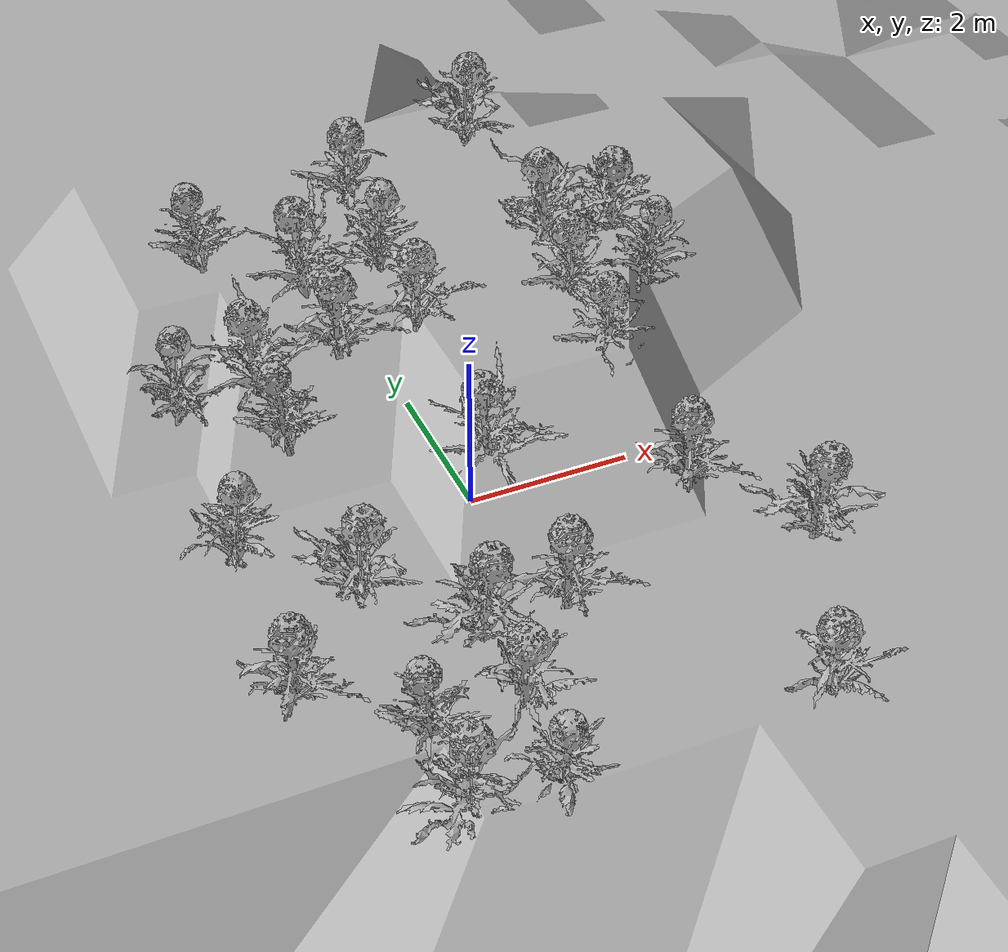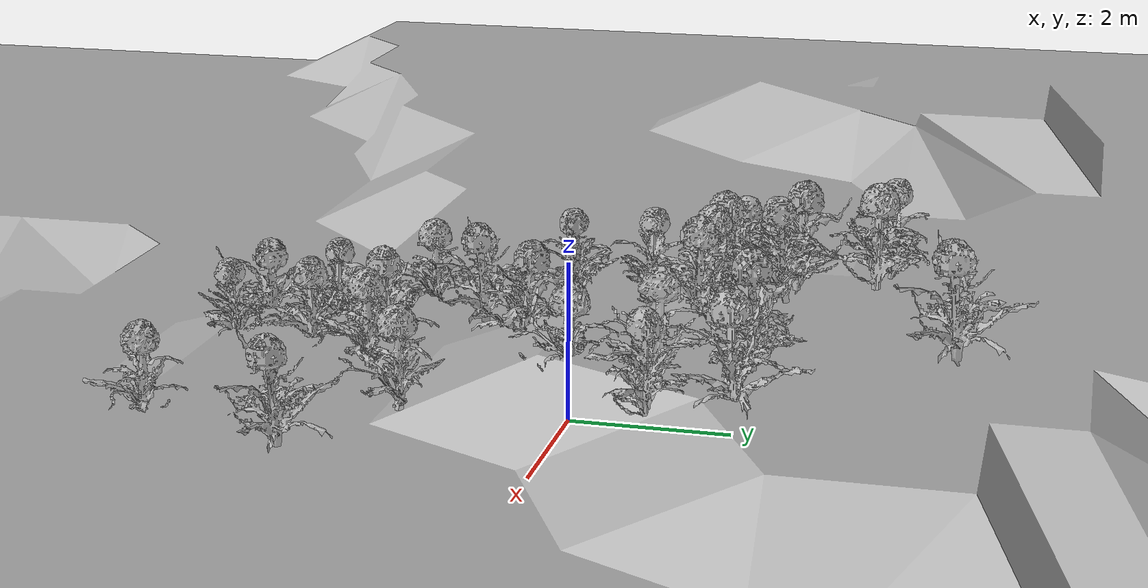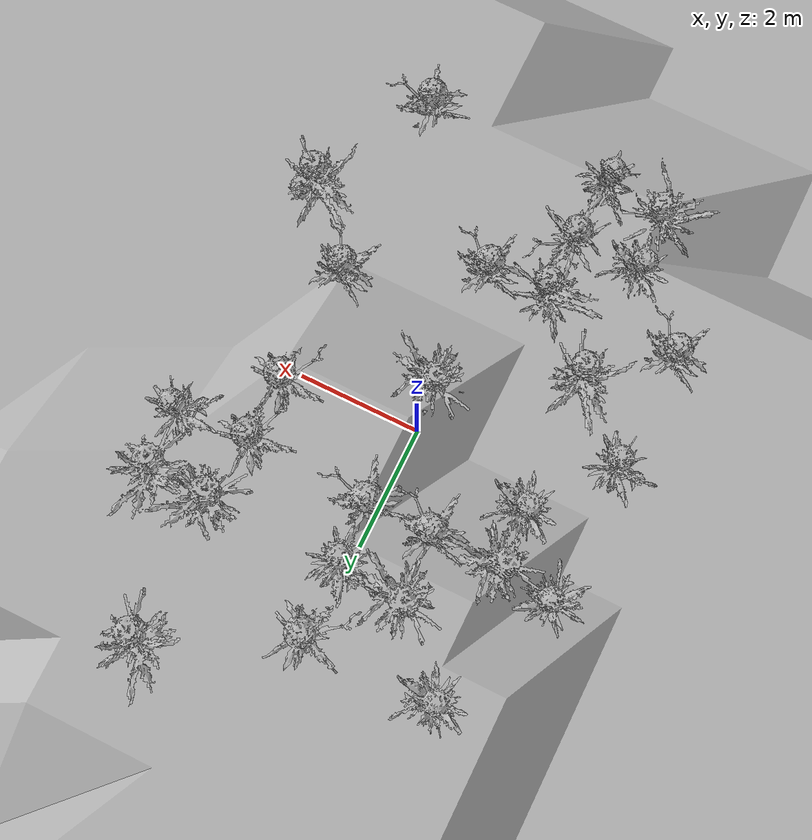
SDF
<sdf version="1.6">
 <world name="default">
  <include><uri>model://sun</uri></include>
  <include><uri>model://terrain1</uri><name>terrain1</name></include>
  <include>
   <pose>-3.04195362527812 -2.5814682026072617 0.3451485388742197 0 0 2.6810490103697093</pose>
   <uri>model://artichoke2</uri>
   <name>artichoke3</name>
  </include>
  <include>
   <pose>-3.000047544493529 -0.5548895119705467 0.6297828951833643 0 0 0.6385324295030874</pose>
   <uri>model://artichoke4</uri>
   <name>artichoke5</name>
  </include>
  <include>
   <pose>-2.96134078704355 1.6049381456569836 0.9595134933793352 0 0 2.3824504419604775</pose>
   <uri>model://artichoke4</uri>
   <name>artichoke7</name>
  </include>
  <include>
   <pose>-2.0167018460238433 -4.580191124526571 0.14813585758536763 0 0 2.00058725452194</pose>
   <uri>model://artichoke1</uri>
   <name>artichoke11</name>
  </include>
  <include>
   <pose>-1.946334367681588 -3.6561364317248706 0.2635118470548126 0 0 -2.0108222563943015</pose>
   <uri>model://artichoke4</uri>
   <name>artichoke12</name>
  </include>
  <include>
   <pose>-1.9526894390896345 -1.581054350310022 0.5559573846402923 0 0 0.44094398126680456</pose>
   <uri>model://artichoke1</uri>
   <name>artichoke14</name>
  </include>
  <include>
   <pose>-1.9666642848850069 0.5890444076497658 0.9455679816905159 0 0 -1.9284304362333906</pose>
   <uri>model://artichoke4</uri>
   <name>artichoke16</name>
  </include>
  <include>
   <pose>-2.0067093336364317 1.5071895050984758 1.1267027203373825 0 0 -1.7459675679611062</pose>
   <uri>model://artichoke1</uri>
   <name>artichoke17</name>
  </include>
  <include>
   <pose>-1.9778049139990845 3.6398107180359327 1.5018939176606563 0 0 -1.7471264211745283</pose>
   <uri>model://artichoke4</uri>
   <name>artichoke19</name>
  </include>
  <include>
   <pose>-0.9881691425506824 -4.655653383183535 0.1873759555510125 0 0 -0.1952785192368518</pose>
   <uri>model://artichoke4</uri>
   <name>artichoke21</name>
  </include>
  <include>
   <pose>-0.9402374786688165 -3.6256950780739174 0.31419467740538454 0 0 -1.998781864026179</pose>
   <uri>model://artichoke2</uri>
   <name>artichoke22</name>
  </include>
  <include>
   <pose>-0.9753397723087286 -2.607364301703567 0.45485416106458876 0 0 1.4236007530488335</pose>
   <uri>model://artichoke1</uri>
   <name>artichoke23</name>
  </include>
  <include>
   <pose>-0.9945079111870182 1.5759820635240653 1.3239390500630104 0 0 2.983942905160065</pose>
   <uri>model://artichoke2</uri>
   <name>artichoke27</name>
  </include>
  <include>
   <pose>-1.0245978050722846 2.59292294667387 1.567357576678624 0 0 -2.224707739750554</pose>
   <uri>model://artichoke1</uri>
   <name>artichoke28</name>
  </include>
  <include>
   <pose>0.03077474820031647 -2.5373419407644247 0.5088389504781939 0 0 2.9602282212152318</pose>
   <uri>model://artichoke2</uri>
   <name>artichoke33</name>
  </include>
  <include>
   <pose>0.010213163104508639 -0.5386129239960417 0.8904620033602562 0 0 -2.2541494529569546</pose>
   <uri>model://artichoke1</uri>
   <name>artichoke35</name>
  </include>
  <include>
   <pose>-0.007967917000790681 1.5788579634103368 1.4290369888538066 0 0 -2.8548506775339</pose>
   <uri>model://artichoke2</uri>
   <name>artichoke37</name>
  </include>
  <include>
   <pose>-0.08589855616596853 2.5863487667073586 1.6967310516865453 0 0 0.3595266199730034</pose>
   <uri>model://artichoke4</uri>
   <name>artichoke38</name>
  </include>
  <include>
   <pose>-0.046434736534708275 3.6418514927323837 1.9345280728378216 0 0 1.1985338632080103</pose>
   <uri>model://artichoke2</uri>
   <name>artichoke39</name>
  </include>
  <include>
   <pose>2.006485202428245 -4.658350231137477 0.280914836989678 0 0 -2.81541349651516</pose>
   <uri>model://artichoke2</uri>
   <name>artichoke41</name>
  </include>
  <include>
   <pose>1.9937557885424086 -1.5043518721071918 0.7071295859873785 0 0 2.63522487926599</pose>
   <uri>model://artichoke2</uri>
   <name>artichoke44</name>
  </include>
  <include>
   <pose>1.972053657853052 0.4855216286904782 1.1172185316534238 0 0 1.5400605709247221</pose>
   <uri>model://artichoke2</uri>
   <name>artichoke46</name>
  </include>
  <include>
   <pose>1.9408831723658932 1.4950455950045647 1.3498576783554204 0 0 1.7515528431113054</pose>
   <uri>model://artichoke2</uri>
   <name>artichoke47</name>
  </include>
  <include>
   <pose>2.0824436864620575 2.5429933297867056 1.5501811530321665 0 0 -1.0344531415257134</pose>
   <uri>model://artichoke1</uri>
   <name>artichoke48</name>
  </include>
  <include>
   <pose>1.948927559265802 4.715197581067086 1.7935607452867863 0 0 0.28389503737165267</pose>
   <uri>model://artichoke1</uri>
   <name>artichoke50</name>
  </include>
  <include>
   <pose>2.998688203059354 -2.624699805948234 0.5094989433400576 0 0 0.815691961564784</pose>
   <uri>model://artichoke1</uri>
   <name>artichoke53</name>
  </include>
  <include>
   <pose>2.9926165509652476 1.5577832690483522 1.2218763026437969 0 0 1.4682982828320608</pose>
   <uri>model://artichoke4</uri>
   <name>artichoke57</name>
  </include>
  <include>
   <pose>3.002564683265093 2.5200523985360728 1.3763004173920765 0 0 -0.3609951780251772</pose>
   <uri>model://artichoke1</uri>
   <name>artichoke58</name>
  </include>
 </world>
</sdf>

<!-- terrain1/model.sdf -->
<sdf version="1.6">
  <model name="terrain1">
    <link name='link'>
      <pose>0 0 0 0 0 0</pose>
      <gravity>1</gravity>
      <self_collide>0</self_collide>
      <kinematic>0</kinematic>
      <enable_wind>0</enable_wind>
      <visual name='visual'>
        <pose>0 0 0 0 0 0</pose>
        <geometry>
          <mesh>
            <uri>model://terrain1/meshes/terrain1.obj</uri>
          </mesh>
        </geometry>
        <transparency>0</transparency>
        <cast_shadows>1</cast_shadows>
      </visual>
      <collision name='collision'>
        <laser_retro>0</laser_retro>
        <max_contacts>10</max_contacts>
        <pose>0 0 0 0 0 0</pose>
        <geometry>
          <mesh>
            <uri>model://terrain1/meshes/terrain1.obj</uri>
            <scale>1 1 1</scale>
          </mesh>
        </geometry>
      </collision>
    </link>
    <static>1</static>
    <allow_auto_disable>1</allow_auto_disable>
  </model>
</sdf>

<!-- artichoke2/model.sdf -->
<sdf version='1.7'>
  <model name="artichoke2">
    <link name='link'>
      <pose>0 0 0 0 0 0</pose>
      <gravity>1</gravity>
      <self_collide>0</self_collide>
      <kinematic>0</kinematic>
      <enable_wind>0</enable_wind>
      <visual name='visual'>
        <pose>0 0 0 0 0 0</pose>
        <geometry>
          <mesh>
            <uri>model://artichoke2/meshes/carciofo2.obj</uri>
          </mesh>
        </geometry>
        <transparency>0</transparency>
        <cast_shadows>1</cast_shadows>
      </visual>
      <collision name='collision'>
        <laser_retro>0</laser_retro>
        <max_contacts>10</max_contacts>
        <pose>0 0 0 0 0 0</pose>
        <geometry>
          <mesh>
            <uri>model://artichoke2/meshes/carciofo2.obj</uri>
            <scale>1 1 1</scale>
          </mesh>
        </geometry>
      </collision>
    </link>
    <static>1</static>
    <allow_auto_disable>1</allow_auto_disable>
  </model>
</sdf>

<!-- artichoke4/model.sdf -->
<sdf version='1.7'>
  <model name="artichoke4">
    <link name='link'>
      <pose>0 0 0 0 0 0</pose>
      <gravity>1</gravity>
      <self_collide>0</self_collide>
      <kinematic>0</kinematic>
      <enable_wind>0</enable_wind>
      <visual name='visual'>
        <pose>0 0 0 0 0 0</pose>
        <geometry>
          <mesh>
            <uri>model://artichoke4/meshes/carciofo4.obj</uri>
          </mesh>
        </geometry>
        <transparency>0</transparency>
        <cast_shadows>1</cast_shadows>
      </visual>
      <collision name='collision'>
        <laser_retro>0</laser_retro>
        <max_contacts>10</max_contacts>
        <pose>0 0 0 0 0 0</pose>
        <geometry>
          <mesh>
            <uri>model://artichoke4/meshes/carciofo4.obj</uri>
            <scale>1 1 1</scale>
          </mesh>
        </geometry>
      </collision>
    </link>
    <static>1</static>
    <allow_auto_disable>1</allow_auto_disable>
  </model>
</sdf>

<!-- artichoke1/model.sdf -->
<sdf version='1.7'>
  <model name="artichoke1">
    <link name='link'>
      <pose>0 0 0 0 0 0</pose>
      <gravity>1</gravity>
      <self_collide>0</self_collide>
      <kinematic>0</kinematic>
      <enable_wind>0</enable_wind>
      <visual name='visual'>
        <pose>0 0 0 0 0 0</pose>
        <geometry>
          <mesh>
            <uri>model://artichoke1/meshes/carciofo1.obj</uri>
          </mesh>
        </geometry>
        <transparency>0</transparency>
        <cast_shadows>1</cast_shadows>
      </visual>
      <collision name='collision'>
        <laser_retro>0</laser_retro>
        <max_contacts>10</max_contacts>
        <pose>0 0 0 0 0 0</pose>
        <geometry>
          <mesh>
            <uri>model://artichoke1/meshes/carciofo1.obj</uri>
            <scale>1 1 1</scale>
          </mesh>
        </geometry>
      </collision>
    </link>
    <static>1</static>
    <allow_auto_disable>1</allow_auto_disable>
  </model>
</sdf>
